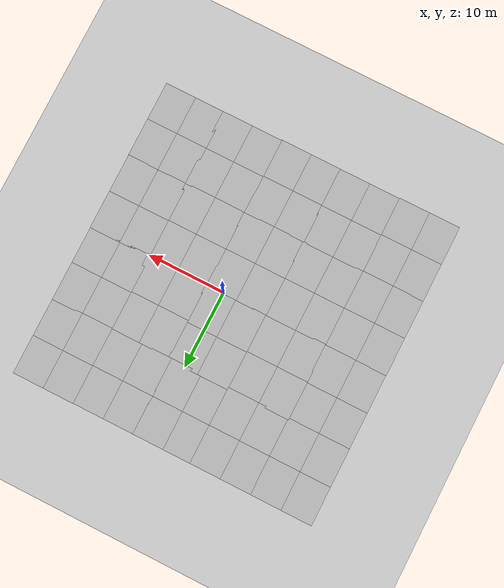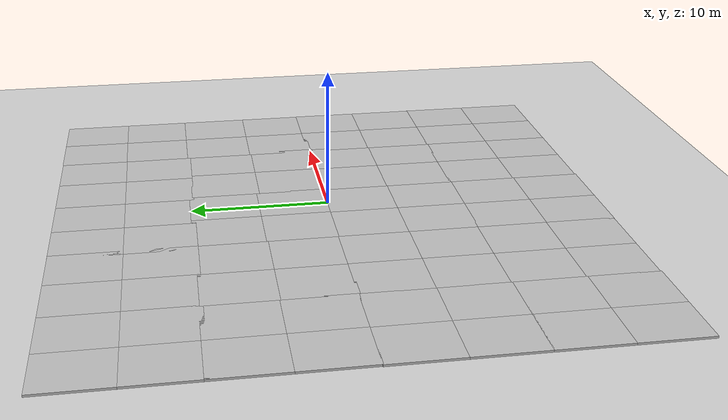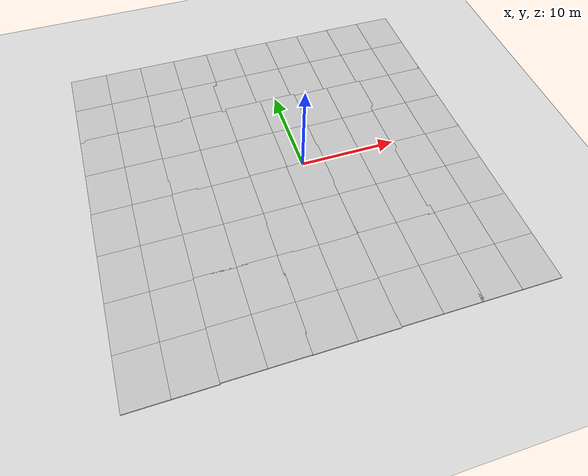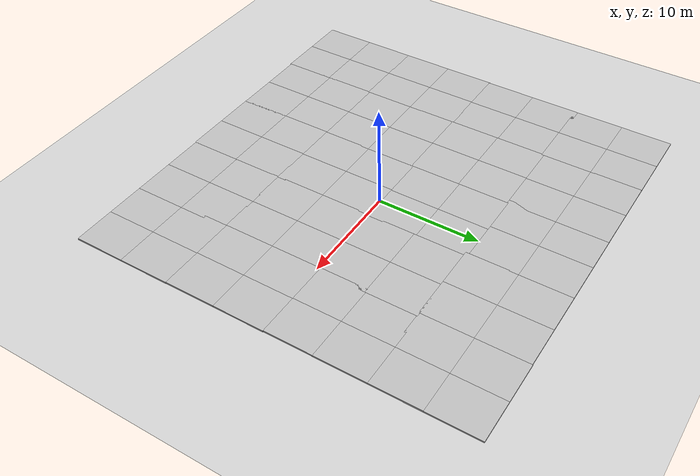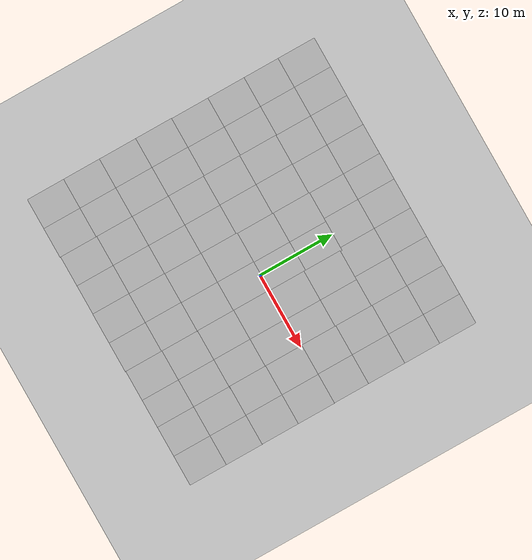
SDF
<sdf version="1.6">
 <world name="default">
  <light name="sun" type="directional">
   <pose>0 0 10 0 -0 0</pose>
   <diffuse>0.8 0.8 0.8 1</diffuse>
   <specular>0.1 0.1 0.1 1</specular>
   <attenuation>
    <range>3000</range>
    <constant>0.9</constant>
    <linear>0.01</linear>
    <quadratic>0.001</quadratic>
   </attenuation>
   <direction>-0.5 0.5 -1</direction>
  </light>
  <model name="ground_plane">
   <static>1</static>
   <link name="link">
    <collision name="collision">
     <geometry><plane><normal>0 0 1</normal><size>100 100</size></plane></geometry>
     <surface><friction><ode><mu>100</mu><mu2>50</mu2></ode></friction></surface>
    </collision>
    <visual name="visual">
     <cast_shadows>0</cast_shadows>
     <geometry><plane><normal>0 0 1</normal><size>100 100</size></plane></geometry>
     <material>
      <script><uri>file://media/materials/scripts/gazebo.material</uri><name>Gazebo/Grey</name></script>
     </material>
    </visual>
   </link>
  </model>
  <gravity>0 0 -9.8</gravity>
  <magnetic_field>6e-06 2.3e-05 -4.2e-05</magnetic_field>
  <atmosphere type="adiabatic"/>
  <physics name="default_physics" default="0" type="ode">
   <max_step_size>0.001</max_step_size>
   <real_time_factor>1</real_time_factor>
   <real_time_update_rate>1000</real_time_update_rate>
  </physics>
  <scene><ambient>0.4 0.4 0.4 1</ambient><background>0.7 0.7 0.7 1</background><shadows>1</shadows></scene>
  <spherical_coordinates>
   <surface_model>EARTH_WGS84</surface_model>
   <latitude_deg>0</latitude_deg>
   <longitude_deg>0</longitude_deg>
   <elevation>0</elevation>
   <heading_deg>0</heading_deg>
  </spherical_coordinates>
  <model name="mud_box_1">
   <static>1</static>
   <link name="link">
    <collision name="collision"><geometry><box><size>8 10 0.2</size></box></geometry></collision>
    <visual name="visual_1">
     <pose>-2 2.5 0 0 -0 0</pose>
     <cast_shadows>0</cast_shadows>
     <geometry><box><size>4 5 0.2</size></box></geometry>
     <material>
      <script>
       <uri>model://mud_box/materials/scripts</uri>
       <uri>model://mud_box/materials/textures</uri>
       <name>vrc/mud</name>
      </script>
     </material>
    </visual>
    <visual name="visual_2">
     <pose>2 2.5 0 0 -0 0</pose>
     <cast_shadows>0</cast_shadows>
     <geometry><box><size>4 5 0.2</size></box></geometry>
     <material>
      <script>
       <uri>model://mud_box/materials/scripts</uri>
       <uri>model://mud_box/materials/textures</uri>
       <name>vrc/mud</name>
      </script>
     </material>
    </visual>
    <visual name="visual_3">
     <pose>2 -2.5 0 0 -0 0</pose>
     <cast_shadows>0</cast_shadows>
     <geometry><box><size>4 5 0.2</size></box></geometry>
     <material>
      <script>
       <uri>model://mud_box/materials/scripts</uri>
       <uri>model://mud_box/materials/textures</uri>
       <name>vrc/mud</name>
      </script>
     </material>
    </visual>
    <visual name="visual_4">
     <pose>-2 -2.5 0 0 -0 0</pose>
     <cast_shadows>0</cast_shadows>
     <geometry><box><size>4 5 0.2</size></box></geometry>
     <material>
      <script>
       <uri>model://mud_box/materials/scripts</uri>
       <uri>model://mud_box/materials/textures</uri>
       <name>vrc/mud</name>
      </script>
     </material>
    </visual>
   </link>
   <pose>13.8107 -4.75622 0 0 -0 0</pose>
  </model>
  <model name="mud_box_2">
   <static>1</static>
   <link name="link">
    <collision name="collision"><geometry><box><size>8 10 0.2</size></box></geometry></collision>
    <visual name="visual_1">
     <pose>-2 2.5 0 0 -0 0</pose>
     <cast_shadows>0</cast_shadows>
     <geometry><box><size>4 5 0.2</size></box></geometry>
     <material>
      <script>
       <uri>model://mud_box/materials/scripts</uri>
       <uri>model://mud_box/materials/textures</uri>
       <name>vrc/mud</name>
      </script>
     </material>
    </visual>
    <visual name="visual_2">
     <pose>2 2.5 0 0 -0 0</pose>
     <cast_shadows>0</cast_shadows>
     <geometry><box><size>4 5 0.2</size></box></geometry>
     <material>
      <script>
       <uri>model://mud_box/materials/scripts</uri>
       <uri>model://mud_box/materials/textures</uri>
       <name>vrc/mud</name>
      </script>
     </material>
    </visual>
    <visual name="visual_3">
     <pose>2 -2.5 0 0 -0 0</pose>
     <cast_shadows>0</cast_shadows>
     <geometry><box><size>4 5 0.2</size></box></geometry>
     <material>
      <script>
       <uri>model://mud_box/materials/scripts</uri>
       <uri>model://mud_box/materials/textures</uri>
       <name>vrc/mud</name>
      </script>
     </material>
    </visual>
    <visual name="visual_4">
     <pose>-2 -2.5 0 0 -0 0</pose>
     <cast_shadows>0</cast_shadows>
     <geometry><box><size>4 5 0.2</size></box></geometry>
     <material>
      <script>
       <uri>model://mud_box/materials/scripts</uri>
       <uri>model://mud_box/materials/textures</uri>
       <name>vrc/mud</name>
      </script>
     </material>
    </visual>
   </link>
   <pose>13.7753 4.9584 0 0 -0 0</pose>
  </model>
  <model name="mud_box_3">
   <static>1</static>
   <link name="link">
    <collision name="collision"><geometry><box><size>8 10 0.2</size></box></geometry></collision>
    <visual name="visual_1">
     <pose>-2 2.5 0 0 -0 0</pose>
     <cast_shadows>0</cast_shadows>
     <geometry><box><size>4 5 0.2</size></box></geometry>
     <material>
      <script>
       <uri>model://mud_box/materials/scripts</uri>
       <uri>model://mud_box/materials/textures</uri>
       <name>vrc/mud</name>
      </script>
     </material>
    </visual>
    <visual name="visual_2">
     <pose>2 2.5 0 0 -0 0</pose>
     <cast_shadows>0</cast_shadows>
     <geometry><box><size>4 5 0.2</size></box></geometry>
     <material>
      <script>
       <uri>model://mud_box/materials/scripts</uri>
       <uri>model://mud_box/materials/textures</uri>
       <name>vrc/mud</name>
      </script>
     </material>
    </visual>
    <visual name="visual_3">
     <pose>2 -2.5 0 0 -0 0</pose>
     <cast_shadows>0</cast_shadows>
     <geometry><box><size>4 5 0.2</size></box></geometry>
     <material>
      <script>
       <uri>model://mud_box/materials/scripts</uri>
       <uri>model://mud_box/materials/textures</uri>
       <name>vrc/mud</name>
      </script>
     </material>
    </visual>
    <visual name="visual_4">
     <pose>-2 -2.5 0 0 -0 0</pose>
     <cast_shadows>0</cast_shadows>
     <geometry><box><size>4 5 0.2</size></box></geometry>
     <material>
      <script>
       <uri>model://mud_box/materials/scripts</uri>
       <uri>model://mud_box/materials/textures</uri>
       <name>vrc/mud</name>
      </script>
     </material>
    </visual>
   </link>
   <pose>6.10703 -4.81276 0 0 -0 0</pose>
  </model>
  <model name="mud_box_4">
   <static>1</static>
   <link name="link">
    <collision name="collision"><geometry><box><size>8 10 0.2</size></box></geometry></collision>
    <visual name="visual_1">
     <pose>-2 2.5 0 0 -0 0</pose>
     <cast_shadows>0</cast_shadows>
     <geometry><box><size>4 5 0.2</size></box></geometry>
     <material>
      <script>
       <uri>model://mud_box/materials/scripts</uri>
       <uri>model://mud_box/materials/textures</uri>
       <name>vrc/mud</name>
      </script>
     </material>
    </visual>
    <visual name="visual_2">
     <pose>2 2.5 0 0 -0 0</pose>
     <cast_shadows>0</cast_shadows>
     <geometry><box><size>4 5 0.2</size></box></geometry>
     <material>
      <script>
       <uri>model://mud_box/materials/scripts</uri>
       <uri>model://mud_box/materials/textures</uri>
       <name>vrc/mud</name>
      </script>
     </material>
    </visual>
    <visual name="visual_3">
     <pose>2 -2.5 0 0 -0 0</pose>
     <cast_shadows>0</cast_shadows>
     <geometry><box><size>4 5 0.2</size></box></geometry>
     <material>
      <script>
       <uri>model://mud_box/materials/scripts</uri>
       <uri>model://mud_box/materials/textures</uri>
       <name>vrc/mud</name>
      </script>
     </material>
    </visual>
    <visual name="visual_4">
     <pose>-2 -2.5 0 0 -0 0</pose>
     <cast_shadows>0</cast_shadows>
     <geometry><box><size>4 5 0.2</size></box></geometry>
     <material>
      <script>
       <uri>model://mud_box/materials/scripts</uri>
       <uri>model://mud_box/materials/textures</uri>
       <name>vrc/mud</name>
      </script>
     </material>
    </visual>
   </link>
   <pose>6.17033 4.85441 0 0 -0 0</pose>
  </model>
  <model name="mud_box_5">
   <static>1</static>
   <link name="link">
    <collision name="collision"><geometry><box><size>8 10 0.2</size></box></geometry></collision>
    <visual name="visual_1">
     <pose>-2 2.5 0 0 -0 0</pose>
     <cast_shadows>0</cast_shadows>
     <geometry><box><size>4 5 0.2</size></box></geometry>
     <material>
      <script>
       <uri>model://mud_box/materials/scripts</uri>
       <uri>model://mud_box/materials/textures</uri>
       <name>vrc/mud</name>
      </script>
     </material>
    </visual>
    <visual name="visual_2">
     <pose>2 2.5 0 0 -0 0</pose>
     <cast_shadows>0</cast_shadows>
     <geometry><box><size>4 5 0.2</size></box></geometry>
     <material>
      <script>
       <uri>model://mud_box/materials/scripts</uri>
       <uri>model://mud_box/materials/textures</uri>
       <name>vrc/mud</name>
      </script>
     </material>
    </visual>
    <visual name="visual_3">
     <pose>2 -2.5 0 0 -0 0</pose>
     <cast_shadows>0</cast_shadows>
     <geometry><box><size>4 5 0.2</size></box></geometry>
     <material>
      <script>
       <uri>model://mud_box/materials/scripts</uri>
       <uri>model://mud_box/materials/textures</uri>
       <name>vrc/mud</name>
      </script>
     </material>
    </visual>
    <visual name="visual_4">
     <pose>-2 -2.5 0 0 -0 0</pose>
     <cast_shadows>0</cast_shadows>
     <geometry><box><size>4 5 0.2</size></box></geometry>
     <material>
      <script>
       <uri>model://mud_box/materials/scripts</uri>
       <uri>model://mud_box/materials/textures</uri>
       <name>vrc/mud</name>
      </script>
     </material>
    </visual>
   </link>
   <pose>-1.79007 -4.85015 0 0 -0 0</pose>
  </model>
  <model name="mud_box_6">
   <static>1</static>
   <link name="link">
    <collision name="collision"><geometry><box><size>8 10 0.2</size></box></geometry></collision>
    <visual name="visual_1">
     <pose>-2 2.5 0 0 -0 0</pose>
     <cast_shadows>0</cast_shadows>
     <geometry><box><size>4 5 0.2</size></box></geometry>
     <material>
      <script>
       <uri>model://mud_box/materials/scripts</uri>
       <uri>model://mud_box/materials/textures</uri>
       <name>vrc/mud</name>
      </script>
     </material>
    </visual>
    <visual name="visual_2">
     <pose>2 2.5 0 0 -0 0</pose>
     <cast_shadows>0</cast_shadows>
     <geometry><box><size>4 5 0.2</size></box></geometry>
     <material>
      <script>
       <uri>model://mud_box/materials/scripts</uri>
       <uri>model://mud_box/materials/textures</uri>
       <name>vrc/mud</name>
      </script>
     </material>
    </visual>
    <visual name="visual_3">
     <pose>2 -2.5 0 0 -0 0</pose>
     <cast_shadows>0</cast_shadows>
     <geometry><box><size>4 5 0.2</size></box></geometry>
     <material>
      <script>
       <uri>model://mud_box/materials/scripts</uri>
       <uri>model://mud_box/materials/textures</uri>
       <name>vrc/mud</name>
      </script>
     </material>
    </visual>
    <visual name="visual_4">
     <pose>-2 -2.5 0 0 -0 0</pose>
     <cast_shadows>0</cast_shadows>
     <geometry><box><size>4 5 0.2</size></box></geometry>
     <material>
      <script>
       <uri>model://mud_box/materials/scripts</uri>
       <uri>model://mud_box/materials/textures</uri>
       <name>vrc/mud</name>
      </script>
     </material>
    </visual>
   </link>
   <pose>-1.71459 5.08172 0 0 -0 0</pose>
  </model>
  <model name="mud_box_7">
   <static>1</static>
   <link name="link">
    <collision name="collision"><geometry><box><size>8 10 0.2</size></box></geometry></collision>
    <visual name="visual_1">
     <pose>-2 2.5 0 0 -0 0</pose>
     <cast_shadows>0</cast_shadows>
     <geometry><box><size>4 5 0.2</size></box></geometry>
     <material>
      <script>
       <uri>model://mud_box/materials/scripts</uri>
       <uri>model://mud_box/materials/textures</uri>
       <name>vrc/mud</name>
      </script>
     </material>
    </visual>
    <visual name="visual_2">
     <pose>2 2.5 0 0 -0 0</pose>
     <cast_shadows>0</cast_shadows>
     <geometry><box><size>4 5 0.2</size></box></geometry>
     <material>
      <script>
       <uri>model://mud_box/materials/scripts</uri>
       <uri>model://mud_box/materials/textures</uri>
       <name>vrc/mud</name>
      </script>
     </material>
    </visual>
    <visual name="visual_3">
     <pose>2 -2.5 0 0 -0 0</pose>
     <cast_shadows>0</cast_shadows>
     <geometry><box><size>4 5 0.2</size></box></geometry>
     <material>
      <script>
       <uri>model://mud_box/materials/scripts</uri>
       <uri>model://mud_box/materials/textures</uri>
       <name>vrc/mud</name>
      </script>
     </material>
    </visual>
    <visual name="visual_4">
     <pose>-2 -2.5 0 0 -0 0</pose>
     <cast_shadows>0</cast_shadows>
     <geometry><box><size>4 5 0.2</size></box></geometry>
     <material>
      <script>
       <uri>model://mud_box/materials/scripts</uri>
       <uri>model://mud_box/materials/textures</uri>
       <name>vrc/mud</name>
      </script>
     </material>
    </visual>
   </link>
   <pose>-9.71456 4.97281 0 0 -0 0</pose>
  </model>
  <model name="mud_box_8">
   <static>1</static>
   <link name="link">
    <collision name="collision"><geometry><box><size>8 10 0.2</size></box></geometry></collision>
    <visual name="visual_1">
     <pose>-2 2.5 0 0 -0 0</pose>
     <cast_shadows>0</cast_shadows>
     <geometry><box><size>4 5 0.2</size></box></geometry>
     <material>
      <script>
       <uri>model://mud_box/materials/scripts</uri>
       <uri>model://mud_box/materials/textures</uri>
       <name>vrc/mud</name>
      </script>
     </material>
    </visual>
    <visual name="visual_2">
     <pose>2 2.5 0 0 -0 0</pose>
     <cast_shadows>0</cast_shadows>
     <geometry><box><size>4 5 0.2</size></box></geometry>
     <material>
      <script>
       <uri>model://mud_box/materials/scripts</uri>
       <uri>model://mud_box/materials/textures</uri>
       <name>vrc/mud</name>
      </script>
     </material>
    </visual>
    <visual name="visual_3">
     <pose>2 -2.5 0 0 -0 0</pose>
     <cast_shadows>0</cast_shadows>
     <geometry><box><size>4 5 0.2</size></box></geometry>
     <material>
      <script>
       <uri>model://mud_box/materials/scripts</uri>
       <uri>model://mud_box/materials/textures</uri>
       <name>vrc/mud</name>
      </script>
     </material>
    </visual>
    <visual name="visual_4">
     <pose>-2 -2.5 0 0 -0 0</pose>
     <cast_shadows>0</cast_shadows>
     <geometry><box><size>4 5 0.2</size></box></geometry>
     <material>
      <script>
       <uri>model://mud_box/materials/scripts</uri>
       <uri>model://mud_box/materials/textures</uri>
       <name>vrc/mud</name>
      </script>
     </material>
    </visual>
   </link>
   <pose>-9.69383 -4.87197 0 0 -0 0</pose>
  </model>
  <model name="mud_box_9">
   <static>1</static>
   <link name="link">
    <collision name="collision"><geometry><box><size>8 10 0.2</size></box></geometry></collision>
    <visual name="visual_1">
     <pose>-2 2.5 0 0 -0 0</pose>
     <cast_shadows>0</cast_shadows>
     <geometry><box><size>4 5 0.2</size></box></geometry>
     <material>
      <script>
       <uri>model://mud_box/materials/scripts</uri>
       <uri>model://mud_box/materials/textures</uri>
       <name>vrc/mud</name>
      </script>
     </material>
    </visual>
    <visual name="visual_2">
     <pose>2 2.5 0 0 -0 0</pose>
     <cast_shadows>0</cast_shadows>
     <geometry><box><size>4 5 0.2</size></box></geometry>
     <material>
      <script>
       <uri>model://mud_box/materials/scripts</uri>
       <uri>model://mud_box/materials/textures</uri>
       <name>vrc/mud</name>
      </script>
     </material>
    </visual>
    <visual name="visual_3">
     <pose>2 -2.5 0 0 -0 0</pose>
     <cast_shadows>0</cast_shadows>
     <geometry><box><size>4 5 0.2</size></box></geometry>
     <material>
      <script>
       <uri>model://mud_box/materials/scripts</uri>
       <uri>model://mud_box/materials/textures</uri>
       <name>vrc/mud</name>
      </script>
     </material>
    </visual>
    <visual name="visual_4">
     <pose>-2 -2.5 0 0 -0 0</pose>
     <cast_shadows>0</cast_shadows>
     <geometry><box><size>4 5 0.2</size></box></geometry>
     <material>
      <script>
       <uri>model://mud_box/materials/scripts</uri>
       <uri>model://mud_box/materials/textures</uri>
       <name>vrc/mud</name>
      </script>
     </material>
    </visual>
   </link>
   <pose>-9.66658 14.7334 0 0 -0 0</pose>
  </model>
  <model name="mud_box_10">
   <static>1</static>
   <link name="link">
    <collision name="collision"><geometry><box><size>8 10 0.2</size></box></geometry></collision>
    <visual name="visual_1">
     <pose>-2 2.5 0 0 -0 0</pose>
     <cast_shadows>0</cast_shadows>
     <geometry><box><size>4 5 0.2</size></box></geometry>
     <material>
      <script>
       <uri>model://mud_box/materials/scripts</uri>
       <uri>model://mud_box/materials/textures</uri>
       <name>vrc/mud</name>
      </script>
     </material>
    </visual>
    <visual name="visual_2">
     <pose>2 2.5 0 0 -0 0</pose>
     <cast_shadows>0</cast_shadows>
     <geometry><box><size>4 5 0.2</size></box></geometry>
     <material>
      <script>
       <uri>model://mud_box/materials/scripts</uri>
       <uri>model://mud_box/materials/textures</uri>
       <name>vrc/mud</name>
      </script>
     </material>
    </visual>
    <visual name="visual_3">
     <pose>2 -2.5 0 0 -0 0</pose>
     <cast_shadows>0</cast_shadows>
     <geometry><box><size>4 5 0.2</size></box></geometry>
     <material>
      <script>
       <uri>model://mud_box/materials/scripts</uri>
       <uri>model://mud_box/materials/textures</uri>
       <name>vrc/mud</name>
      </script>
     </material>
    </visual>
    <visual name="visual_4">
     <pose>-2 -2.5 0 0 -0 0</pose>
     <cast_shadows>0</cast_shadows>
     <geometry><box><size>4 5 0.2</size></box></geometry>
     <material>
      <script>
       <uri>model://mud_box/materials/scripts</uri>
       <uri>model://mud_box/materials/textures</uri>
       <name>vrc/mud</name>
      </script>
     </material>
    </visual>
   </link>
   <pose>-2.13356 14.7404 0 0 -0 0</pose>
  </model>
  <model name="mud_box_11">
   <static>1</static>
   <link name="link">
    <collision name="collision"><geometry><box><size>8 10 0.2</size></box></geometry></collision>
    <visual name="visual_1">
     <pose>-2 2.5 0 0 -0 0</pose>
     <cast_shadows>0</cast_shadows>
     <geometry><box><size>4 5 0.2</size></box></geometry>
     <material>
      <script>
       <uri>model://mud_box/materials/scripts</uri>
       <uri>model://mud_box/materials/textures</uri>
       <name>vrc/mud</name>
      </script>
     </material>
    </visual>
    <visual name="visual_2">
     <pose>2 2.5 0 0 -0 0</pose>
     <cast_shadows>0</cast_shadows>
     <geometry><box><size>4 5 0.2</size></box></geometry>
     <material>
      <script>
       <uri>model://mud_box/materials/scripts</uri>
       <uri>model://mud_box/materials/textures</uri>
       <name>vrc/mud</name>
      </script>
     </material>
    </visual>
    <visual name="visual_3">
     <pose>2 -2.5 0 0 -0 0</pose>
     <cast_shadows>0</cast_shadows>
     <geometry><box><size>4 5 0.2</size></box></geometry>
     <material>
      <script>
       <uri>model://mud_box/materials/scripts</uri>
       <uri>model://mud_box/materials/textures</uri>
       <name>vrc/mud</name>
      </script>
     </material>
    </visual>
    <visual name="visual_4">
     <pose>-2 -2.5 0 0 -0 0</pose>
     <cast_shadows>0</cast_shadows>
     <geometry><box><size>4 5 0.2</size></box></geometry>
     <material>
      <script>
       <uri>model://mud_box/materials/scripts</uri>
       <uri>model://mud_box/materials/textures</uri>
       <name>vrc/mud</name>
      </script>
     </material>
    </visual>
   </link>
   <pose>5.79166 14.7412 0 0 -0 0</pose>
  </model>
  <model name="mud_box_12">
   <static>1</static>
   <link name="link">
    <collision name="collision"><geometry><box><size>8 10 0.2</size></box></geometry></collision>
    <visual name="visual_1">
     <pose>-2 2.5 0 0 -0 0</pose>
     <cast_shadows>0</cast_shadows>
     <geometry><box><size>4 5 0.2</size></box></geometry>
     <material>
      <script>
       <uri>model://mud_box/materials/scripts</uri>
       <uri>model://mud_box/materials/textures</uri>
       <name>vrc/mud</name>
      </script>
     </material>
    </visual>
    <visual name="visual_2">
     <pose>2 2.5 0 0 -0 0</pose>
     <cast_shadows>0</cast_shadows>
     <geometry><box><size>4 5 0.2</size></box></geometry>
     <material>
      <script>
       <uri>model://mud_box/materials/scripts</uri>
       <uri>model://mud_box/materials/textures</uri>
       <name>vrc/mud</name>
      </script>
     </material>
    </visual>
    <visual name="visual_3">
     <pose>2 -2.5 0 0 -0 0</pose>
     <cast_shadows>0</cast_shadows>
     <geometry><box><size>4 5 0.2</size></box></geometry>
     <material>
      <script>
       <uri>model://mud_box/materials/scripts</uri>
       <uri>model://mud_box/materials/textures</uri>
       <name>vrc/mud</name>
      </script>
     </material>
    </visual>
    <visual name="visual_4">
     <pose>-2 -2.5 0 0 -0 0</pose>
     <cast_shadows>0</cast_shadows>
     <geometry><box><size>4 5 0.2</size></box></geometry>
     <material>
      <script>
       <uri>model://mud_box/materials/scripts</uri>
       <uri>model://mud_box/materials/textures</uri>
       <name>vrc/mud</name>
      </script>
     </material>
    </visual>
   </link>
   <pose>13.7752 14.7732 0 0 -0 0</pose>
  </model>
  <model name="mud_box_13">
   <static>1</static>
   <link name="link">
    <collision name="collision"><geometry><box><size>8 10 0.2</size></box></geometry></collision>
    <visual name="visual_1">
     <pose>-2 2.5 0 0 -0 0</pose>
     <cast_shadows>0</cast_shadows>
     <geometry><box><size>4 5 0.2</size></box></geometry>
     <material>
      <script>
       <uri>model://mud_box/materials/scripts</uri>
       <uri>model://mud_box/materials/textures</uri>
       <name>vrc/mud</name>
      </script>
     </material>
    </visual>
    <visual name="visual_2">
     <pose>2 2.5 0 0 -0 0</pose>
     <cast_shadows>0</cast_shadows>
     <geometry><box><size>4 5 0.2</size></box></geometry>
     <material>
      <script>
       <uri>model://mud_box/materials/scripts</uri>
       <uri>model://mud_box/materials/textures</uri>
       <name>vrc/mud</name>
      </script>
     </material>
    </visual>
    <visual name="visual_3">
     <pose>2 -2.5 0 0 -0 0</pose>
     <cast_shadows>0</cast_shadows>
     <geometry><box><size>4 5 0.2</size></box></geometry>
     <material>
      <script>
       <uri>model://mud_box/materials/scripts</uri>
       <uri>model://mud_box/materials/textures</uri>
       <name>vrc/mud</name>
      </script>
     </material>
    </visual>
    <visual name="visual_4">
     <pose>-2 -2.5 0 0 -0 0</pose>
     <cast_shadows>0</cast_shadows>
     <geometry><box><size>4 5 0.2</size></box></geometry>
     <material>
      <script>
       <uri>model://mud_box/materials/scripts</uri>
       <uri>model://mud_box/materials/textures</uri>
       <name>vrc/mud</name>
      </script>
     </material>
    </visual>
   </link>
   <pose>13.8368 -14.7144 0 0 -0 0</pose>
  </model>
  <model name="mud_box_14">
   <static>1</static>
   <link name="link">
    <collision name="collision"><geometry><box><size>8 10 0.2</size></box></geometry></collision>
    <visual name="visual_1">
     <pose>-2 2.5 0 0 -0 0</pose>
     <cast_shadows>0</cast_shadows>
     <geometry><box><size>4 5 0.2</size></box></geometry>
     <material>
      <script>
       <uri>model://mud_box/materials/scripts</uri>
       <uri>model://mud_box/materials/textures</uri>
       <name>vrc/mud</name>
      </script>
     </material>
    </visual>
    <visual name="visual_2">
     <pose>2 2.5 0 0 -0 0</pose>
     <cast_shadows>0</cast_shadows>
     <geometry><box><size>4 5 0.2</size></box></geometry>
     <material>
      <script>
       <uri>model://mud_box/materials/scripts</uri>
       <uri>model://mud_box/materials/textures</uri>
       <name>vrc/mud</name>
      </script>
     </material>
    </visual>
    <visual name="visual_3">
     <pose>2 -2.5 0 0 -0 0</pose>
     <cast_shadows>0</cast_shadows>
     <geometry><box><size>4 5 0.2</size></box></geometry>
     <material>
      <script>
       <uri>model://mud_box/materials/scripts</uri>
       <uri>model://mud_box/materials/textures</uri>
       <name>vrc/mud</name>
      </script>
     </material>
    </visual>
    <visual name="visual_4">
     <pose>-2 -2.5 0 0 -0 0</pose>
     <cast_shadows>0</cast_shadows>
     <geometry><box><size>4 5 0.2</size></box></geometry>
     <material>
      <script>
       <uri>model://mud_box/materials/scripts</uri>
       <uri>model://mud_box/materials/textures</uri>
       <name>vrc/mud</name>
      </script>
     </material>
    </visual>
   </link>
   <pose>6.11812 -14.7149 0 0 -0 0</pose>
  </model>
  <model name="mud_box_15">
   <static>1</static>
   <link name="link">
    <collision name="collision"><geometry><box><size>8 10 0.2</size></box></geometry></collision>
    <visual name="visual_1">
     <pose>-2 2.5 0 0 -0 0</pose>
     <cast_shadows>0</cast_shadows>
     <geometry><box><size>4 5 0.2</size></box></geometry>
     <material>
      <script>
       <uri>model://mud_box/materials/scripts</uri>
       <uri>model://mud_box/materials/textures</uri>
       <name>vrc/mud</name>
      </script>
     </material>
    </visual>
    <visual name="visual_2">
     <pose>2 2.5 0 0 -0 0</pose>
     <cast_shadows>0</cast_shadows>
     <geometry><box><size>4 5 0.2</size></box></geometry>
     <material>
      <script>
       <uri>model://mud_box/materials/scripts</uri>
       <uri>model://mud_box/materials/textures</uri>
       <name>vrc/mud</name>
      </script>
     </material>
    </visual>
    <visual name="visual_3">
     <pose>2 -2.5 0 0 -0 0</pose>
     <cast_shadows>0</cast_shadows>
     <geometry><box><size>4 5 0.2</size></box></geometry>
     <material>
      <script>
       <uri>model://mud_box/materials/scripts</uri>
       <uri>model://mud_box/materials/textures</uri>
       <name>vrc/mud</name>
      </script>
     </material>
    </visual>
    <visual name="visual_4">
     <pose>-2 -2.5 0 0 -0 0</pose>
     <cast_shadows>0</cast_shadows>
     <geometry><box><size>4 5 0.2</size></box></geometry>
     <material>
      <script>
       <uri>model://mud_box/materials/scripts</uri>
       <uri>model://mud_box/materials/textures</uri>
       <name>vrc/mud</name>
      </script>
     </material>
    </visual>
   </link>
   <pose>-1.83135 -14.783 0 0 -0 0</pose>
  </model>
  <model name="mud_box_16">
   <static>1</static>
   <link name="link">
    <collision name="collision"><geometry><box><size>8 10 0.2</size></box></geometry></collision>
    <visual name="visual_1">
     <pose>-2 2.5 0 0 -0 0</pose>
     <cast_shadows>0</cast_shadows>
     <geometry><box><size>4 5 0.2</size></box></geometry>
     <material>
      <script>
       <uri>model://mud_box/materials/scripts</uri>
       <uri>model://mud_box/materials/textures</uri>
       <name>vrc/mud</name>
      </script>
     </material>
    </visual>
    <visual name="visual_2">
     <pose>2 2.5 0 0 -0 0</pose>
     <cast_shadows>0</cast_shadows>
     <geometry><box><size>4 5 0.2</size></box></geometry>
     <material>
      <script>
       <uri>model://mud_box/materials/scripts</uri>
       <uri>model://mud_box/materials/textures</uri>
       <name>vrc/mud</name>
      </script>
     </material>
    </visual>
    <visual name="visual_3">
     <pose>2 -2.5 0 0 -0 0</pose>
     <cast_shadows>0</cast_shadows>
     <geometry><box><size>4 5 0.2</size></box></geometry>
     <material>
      <script>
       <uri>model://mud_box/materials/scripts</uri>
       <uri>model://mud_box/materials/textures</uri>
       <name>vrc/mud</name>
      </script>
     </material>
    </visual>
    <visual name="visual_4">
     <pose>-2 -2.5 0 0 -0 0</pose>
     <cast_shadows>0</cast_shadows>
     <geometry><box><size>4 5 0.2</size></box></geometry>
     <material>
      <script>
       <uri>model://mud_box/materials/scripts</uri>
       <uri>model://mud_box/materials/textures</uri>
       <name>vrc/mud</name>
      </script>
     </material>
    </visual>
   </link>
   <pose>-9.70987 -14.759 0 0 -0 0</pose>
  </model>
  <model name="mud_box_17">
   <static>1</static>
   <link name="link">
    <collision name="collision"><geometry><box><size>8 10 0.2</size></box></geometry></collision>
    <visual name="visual_1">
     <pose>-2 2.5 0 0 -0 0</pose>
     <cast_shadows>0</cast_shadows>
     <geometry><box><size>4 5 0.2</size></box></geometry>
     <material>
      <script>
       <uri>model://mud_box/materials/scripts</uri>
       <uri>model://mud_box/materials/textures</uri>
       <name>vrc/mud</name>
      </script>
     </material>
    </visual>
    <visual name="visual_2">
     <pose>2 2.5 0 0 -0 0</pose>
     <cast_shadows>0</cast_shadows>
     <geometry><box><size>4 5 0.2</size></box></geometry>
     <material>
      <script>
       <uri>model://mud_box/materials/scripts</uri>
       <uri>model://mud_box/materials/textures</uri>
       <name>vrc/mud</name>
      </script>
     </material>
    </visual>
    <visual name="visual_3">
     <pose>2 -2.5 0 0 -0 0</pose>
     <cast_shadows>0</cast_shadows>
     <geometry><box><size>4 5 0.2</size></box></geometry>
     <material>
      <script>
       <uri>model://mud_box/materials/scripts</uri>
       <uri>model://mud_box/materials/textures</uri>
       <name>vrc/mud</name>
      </script>
     </material>
    </visual>
    <visual name="visual_4">
     <pose>-2 -2.5 0 0 -0 0</pose>
     <cast_shadows>0</cast_shadows>
     <geometry><box><size>4 5 0.2</size></box></geometry>
     <material>
      <script>
       <uri>model://mud_box/materials/scripts</uri>
       <uri>model://mud_box/materials/textures</uri>
       <name>vrc/mud</name>
      </script>
     </material>
    </visual>
   </link>
   <pose>-17.6179 5.0495 0 0 -0 0</pose>
  </model>
  <model name="mud_box_18">
   <static>1</static>
   <link name="link">
    <collision name="collision"><geometry><box><size>8 10 0.2</size></box></geometry></collision>
    <visual name="visual_1">
     <pose>-2 2.5 0 0 -0 0</pose>
     <cast_shadows>0</cast_shadows>
     <geometry><box><size>4 5 0.2</size></box></geometry>
     <material>
      <script>
       <uri>model://mud_box/materials/scripts</uri>
       <uri>model://mud_box/materials/textures</uri>
       <name>vrc/mud</name>
      </script>
     </material>
    </visual>
    <visual name="visual_2">
     <pose>2 2.5 0 0 -0 0</pose>
     <cast_shadows>0</cast_shadows>
     <geometry><box><size>4 5 0.2</size></box></geometry>
     <material>
      <script>
       <uri>model://mud_box/materials/scripts</uri>
       <uri>model://mud_box/materials/textures</uri>
       <name>vrc/mud</name>
      </script>
     </material>
    </visual>
    <visual name="visual_3">
     <pose>2 -2.5 0 0 -0 0</pose>
     <cast_shadows>0</cast_shadows>
     <geometry><box><size>4 5 0.2</size></box></geometry>
     <material>
      <script>
       <uri>model://mud_box/materials/scripts</uri>
       <uri>model://mud_box/materials/textures</uri>
       <name>vrc/mud</name>
      </script>
     </material>
    </visual>
    <visual name="visual_4">
     <pose>-2 -2.5 0 0 -0 0</pose>
     <cast_shadows>0</cast_shadows>
     <geometry><box><size>4 5 0.2</size></box></geometry>
     <material>
      <script>
       <uri>model://mud_box/materials/scripts</uri>
       <uri>model://mud_box/materials/textures</uri>
       <name>vrc/mud</name>
      </script>
     </material>
    </visual>
   </link>
   <pose>-17.6595 -4.89622 0 0 -0 0</pose>
  </model>
  <model name="mud_box_19">
   <static>1</static>
   <link name="link">
    <collision name="collision"><geometry><box><size>8 10 0.2</size></box></geometry></collision>
    <visual name="visual_1">
     <pose>-2 2.5 0 0 -0 0</pose>
     <cast_shadows>0</cast_shadows>
     <geometry><box><size>4 5 0.2</size></box></geometry>
     <material>
      <script>
       <uri>model://mud_box/materials/scripts</uri>
       <uri>model://mud_box/materials/textures</uri>
       <name>vrc/mud</name>
      </script>
     </material>
    </visual>
    <visual name="visual_2">
     <pose>2 2.5 0 0 -0 0</pose>
     <cast_shadows>0</cast_shadows>
     <geometry><box><size>4 5 0.2</size></box></geometry>
     <material>
      <script>
       <uri>model://mud_box/materials/scripts</uri>
       <uri>model://mud_box/materials/textures</uri>
       <name>vrc/mud</name>
      </script>
     </material>
    </visual>
    <visual name="visual_3">
     <pose>2 -2.5 0 0 -0 0</pose>
     <cast_shadows>0</cast_shadows>
     <geometry><box><size>4 5 0.2</size></box></geometry>
     <material>
      <script>
       <uri>model://mud_box/materials/scripts</uri>
       <uri>model://mud_box/materials/textures</uri>
       <name>vrc/mud</name>
      </script>
     </material>
    </visual>
    <visual name="visual_4">
     <pose>-2 -2.5 0 0 -0 0</pose>
     <cast_shadows>0</cast_shadows>
     <geometry><box><size>4 5 0.2</size></box></geometry>
     <material>
      <script>
       <uri>model://mud_box/materials/scripts</uri>
       <uri>model://mud_box/materials/textures</uri>
       <name>vrc/mud</name>
      </script>
     </material>
    </visual>
   </link>
   <pose>-17.6673 -14.8426 0 0 -0 0</pose>
  </model>
  <model name="mud_box">
   <static>1</static>
   <link name="link">
    <collision name="collision"><geometry><box><size>8 10 0.2</size></box></geometry></collision>
    <visual name="visual_1">
     <pose>-2 2.5 0 0 -0 0</pose>
     <cast_shadows>0</cast_shadows>
     <geometry><box><size>4 5 0.2</size></box></geometry>
     <material>
      <script>
       <uri>model://mud_box/materials/scripts</uri>
       <uri>model://mud_box/materials/textures</uri>
       <name>vrc/mud</name>
      </script>
     </material>
    </visual>
    <visual name="visual_2">
     <pose>2 2.5 0 0 -0 0</pose>
     <cast_shadows>0</cast_shadows>
     <geometry><box><size>4 5 0.2</size></box></geometry>
     <material>
      <script>
       <uri>model://mud_box/materials/scripts</uri>
       <uri>model://mud_box/materials/textures</uri>
       <name>vrc/mud</name>
      </script>
     </material>
    </visual>
    <visual name="visual_3">
     <pose>2 -2.5 0 0 -0 0</pose>
     <cast_shadows>0</cast_shadows>
     <geometry><box><size>4 5 0.2</size></box></geometry>
     <material>
      <script>
       <uri>model://mud_box/materials/scripts</uri>
       <uri>model://mud_box/materials/textures</uri>
       <name>vrc/mud</name>
      </script>
     </material>
    </visual>
    <visual name="visual_4">
     <pose>-2 -2.5 0 0 -0 0</pose>
     <cast_shadows>0</cast_shadows>
     <geometry><box><size>4 5 0.2</size></box></geometry>
     <material>
      <script>
       <uri>model://mud_box/materials/scripts</uri>
       <uri>model://mud_box/materials/textures</uri>
       <name>vrc/mud</name>
      </script>
     </material>
    </visual>
   </link>
   <pose>-17.6175 14.7368 0 0 -0 0</pose>
  </model>
 </world>
</sdf>
